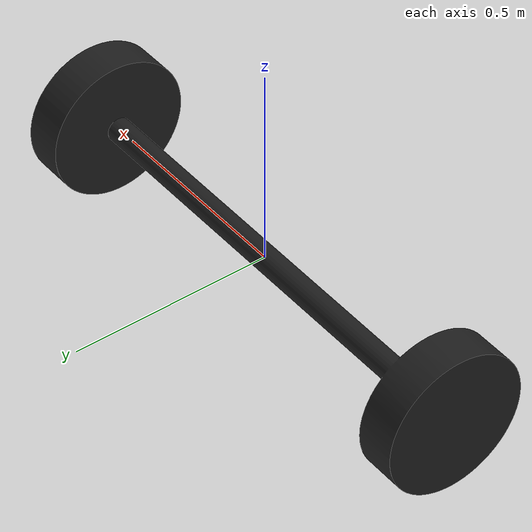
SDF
<?xml version="1.0" ?>
<sdf version="1.6">
  <model name="barbell">
    <pose>0 0 0 0 1.57 0</pose>

    <link name="barbell">
      <pose>0 0 0 0 0 0</pose>

      <visual name="barbell_visual">
        <geometry>
          <mesh><uri>model://barbell/meshes/barbell.stl</uri></mesh>
        </geometry>
        <material>
          <script>
            <uri>file://media/materials/scripts/gazebo.material</uri>
            <name>Gazebo/Black</name>
          </script>
        </material>
      </visual>

      <collision name="barbell_collision">
        <geometry>
          <mesh><uri>model://barbell/meshes/barbell.stl</uri></mesh>
        </geometry>
        <surface>
          <friction>
            <ode>
              <mu>1.0</mu>
              <mu2>1.0</mu2>
            </ode>
          </friction>
        </surface>
      </collision>

    </link>
  </model>
</sdf>
